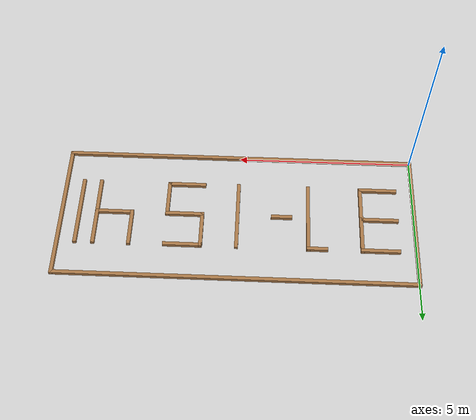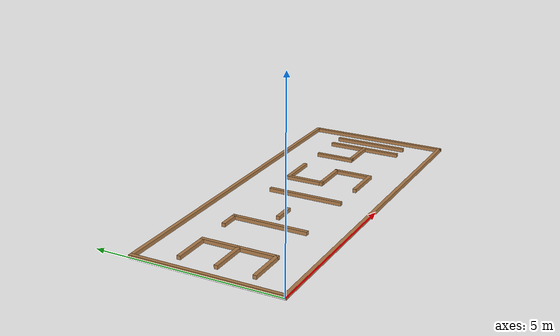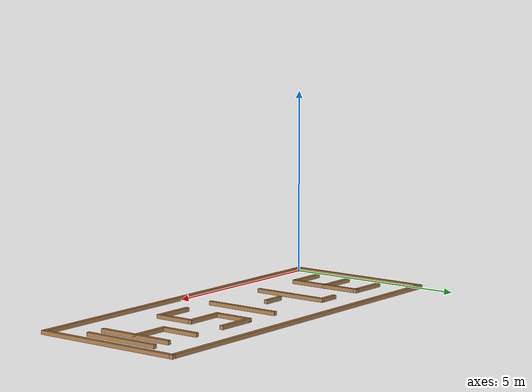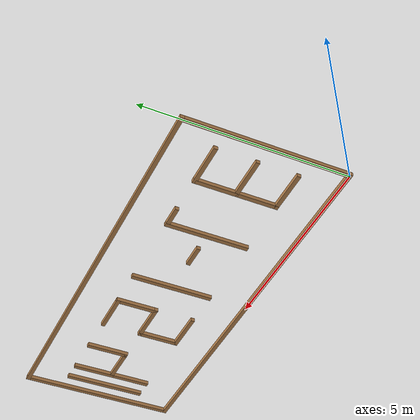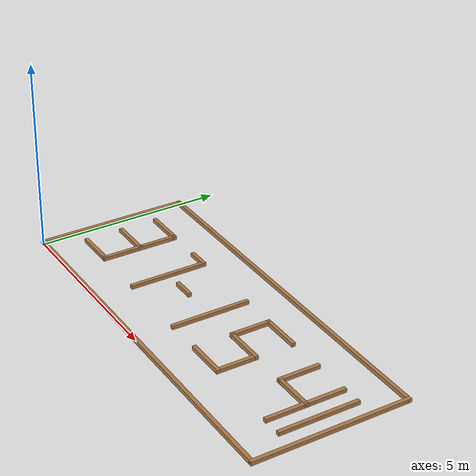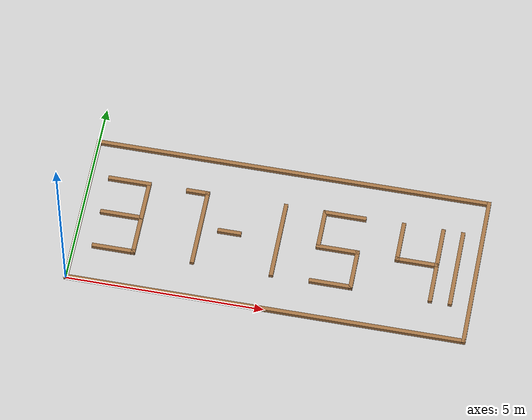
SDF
<?xml version='1.0'?>
<sdf version='1.6'>
  <model name='ModelBuilding'>
    <pose frame=''>5 2 0 0 -0 0</pose>
    <link name='Wall_14'>
      <collision name='Wall_14_Collision'>
        <geometry>
          <box>
            <size>1.1 0.1 0.1</size>
          </box>
        </geometry>
        <pose frame=''>0 0 0.05 0 -0 0</pose>
      </collision>
      <visual name='Wall_14_Visual'>
        <pose frame=''>0 0 0.05 0 -0 0</pose>
        <geometry>
          <box>
            <size>1.1 0.1 0.1</size>
          </box>
        </geometry>
        <material>
          <script>
            <uri>file://media/materials/scripts/gazebo.material</uri>
            <name>Gazebo/Wood</name>
          </script>
          <ambient>1 1 1 1</ambient>
        </material>
      </visual>
      <pose frame=''>-4 -1 0 0 -0 0</pose>
    </link>
    <link name='Wall_15'>
      <collision name='Wall_15_Collision'>
        <geometry>
          <box>
            <size>1.1 0.1 0.1</size>
          </box>
        </geometry>
        <pose frame=''>0 0 0.05 0 -0 0</pose>
      </collision>
      <visual name='Wall_15_Visual'>
        <pose frame=''>0 0 0.05 0 -0 0</pose>
        <geometry>
          <box>
            <size>1.1 0.1 0.1</size>
          </box>
        </geometry>
        <material>
          <script>
            <uri>file://media/materials/scripts/gazebo.material</uri>
            <name>Gazebo/Wood</name>
          </script>
          <ambient>1 1 1 1</ambient>
        </material>
      </visual>
      <pose frame=''>-3.5 -0.5 0 0 -0 1.5708</pose>
    </link>
    <link name='Wall_16'>
      <collision name='Wall_16_Collision'>
        <geometry>
          <box>
            <size>1.1 0.1 0.1</size>
          </box>
        </geometry>
        <pose frame=''>0 0 0.05 0 -0 0</pose>
      </collision>
      <visual name='Wall_16_Visual'>
        <pose frame=''>0 0 0.05 0 -0 0</pose>
        <geometry>
          <box>
            <size>1.1 0.1 0.1</size>
          </box>
        </geometry>
        <material>
          <script>
            <uri>file://media/materials/scripts/gazebo.material</uri>
            <name>Gazebo/Wood</name>
          </script>
          <ambient>1 1 1 1</ambient>
        </material>
      </visual>
      <pose frame=''>-4 0 0 0 -0 3.14159</pose>
    </link>
    <link name='Wall_18'>
      <collision name='Wall_18_Collision'>
        <geometry>
          <box>
            <size>1.1 0.1 0.1</size>
          </box>
        </geometry>
        <pose frame=''>0 0 0.05 0 -0 0</pose>
      </collision>
      <visual name='Wall_18_Visual'>
        <pose frame=''>0 0 0.05 0 -0 0</pose>
        <geometry>
          <box>
            <size>1.1 0.1 0.1</size>
          </box>
        </geometry>
        <material>
          <script>
            <uri>file://media/materials/scripts/gazebo.material</uri>
            <name>Gazebo/Wood</name>
          </script>
          <ambient>1 1 1 1</ambient>
        </material>
      </visual>
      <pose frame=''>-3.5 0.5 0 0 -0 1.5708</pose>
    </link>
    <link name='Wall_19'>
      <collision name='Wall_19_Collision'>
        <geometry>
          <box>
            <size>1.1 0.1 0.1</size>
          </box>
        </geometry>
        <pose frame=''>0 0 0.05 0 -0 0</pose>
      </collision>
      <visual name='Wall_19_Visual'>
        <pose frame=''>0 0 0.05 0 -0 0</pose>
        <geometry>
          <box>
            <size>1.1 0.1 0.1</size>
          </box>
        </geometry>
        <material>
          <script>
            <uri>file://media/materials/scripts/gazebo.material</uri>
            <name>Gazebo/Wood</name>
          </script>
          <ambient>1 1 1 1</ambient>
        </material>
      </visual>
      <pose frame=''>-4 1 0 0 -0 3.14159</pose>
    </link>
    <link name='Wall_21'>
      <collision name='Wall_21_Collision'>
        <geometry>
          <box>
            <size>0.6 0.1 0.1</size>
          </box>
        </geometry>
        <pose frame=''>0 0 0.05 0 -0 0</pose>
      </collision>
      <visual name='Wall_21_Visual'>
        <pose frame=''>0 0 0.05 0 -0 0</pose>
        <geometry>
          <box>
            <size>0.6 0.1 0.1</size>
          </box>
        </geometry>
        <material>
          <script>
            <uri>file://media/materials/scripts/gazebo.material</uri>
            <name>Gazebo/Wood</name>
          </script>
          <ambient>1 1 1 1</ambient>
        </material>
      </visual>
      <pose frame=''>-2.25 1 0 0 -0 0</pose>
    </link>
    <link name='Wall_22'>
      <collision name='Wall_22_Collision'>
        <geometry>
          <box>
            <size>2.1 0.1 0.1</size>
          </box>
        </geometry>
        <pose frame=''>0 0 0.05 0 -0 0</pose>
      </collision>
      <visual name='Wall_22_Visual'>
        <pose frame=''>0 0 0.05 0 -0 0</pose>
        <geometry>
          <box>
            <size>2.1 0.1 0.1</size>
          </box>
        </geometry>
        <material>
          <script>
            <uri>file://media/materials/scripts/gazebo.material</uri>
            <name>Gazebo/Wood</name>
          </script>
          <ambient>1 1 1 1</ambient>
        </material>
      </visual>
      <pose frame=''>-2 0 0 0 0 -1.5708</pose>
    </link>
    <link name='Wall_24'>
      <collision name='Wall_24_Collision'>
        <geometry>
          <box>
            <size>0.6 0.1 0.1</size>
          </box>
        </geometry>
        <pose frame=''>0 0 0.05 0 -0 0</pose>
      </collision>
      <visual name='Wall_24_Visual'>
        <pose frame=''>0 0 0.05 0 -0 0</pose>
        <geometry>
          <box>
            <size>0.6 0.1 0.1</size>
          </box>
        </geometry>
        <material>
          <script>
            <uri>file://media/materials/scripts/gazebo.material</uri>
            <name>Gazebo/Wood</name>
          </script>
          <ambient>1 1 1 1</ambient>
        </material>
      </visual>
      <pose frame=''>-1.25 0 0 0 -0 0</pose>
    </link>
    <link name='Wall_31'>
      <collision name='Wall_31_Collision'>
        <geometry>
          <box>
            <size>2.1 0.1 0.1</size>
          </box>
        </geometry>
        <pose frame=''>0 0 0.05 0 -0 0</pose>
      </collision>
      <visual name='Wall_31_Visual'>
        <pose frame=''>0 0 0.05 0 -0 0</pose>
        <geometry>
          <box>
            <size>2.1 0.1 0.1</size>
          </box>
        </geometry>
        <material>
          <script>
            <uri>file://media/materials/scripts/gazebo.material</uri>
            <name>Gazebo/Wood</name>
          </script>
          <ambient>1 1 1 1</ambient>
        </material>
      </visual>
      <pose frame=''>0 0 0 0 0 -1.5708</pose>
    </link>
    <link name='Wall_36'>
      <collision name='Wall_36_Collision'>
        <geometry>
          <box>
            <size>1.1 0.1 0.1</size>
          </box>
        </geometry>
        <pose frame=''>0 0 0.05 0 -0 0</pose>
      </collision>
      <visual name='Wall_36_Visual'>
        <pose frame=''>0 0 0.05 0 -0 0</pose>
        <geometry>
          <box>
            <size>1.1 0.1 0.1</size>
          </box>
        </geometry>
        <material>
          <script>
            <uri>file://media/materials/scripts/gazebo.material</uri>
            <name>Gazebo/Wood</name>
          </script>
          <ambient>1 1 1 1</ambient>
        </material>
      </visual>
      <pose frame=''>1.5 -1 0 0 -0 0</pose>
    </link>
    <link name='Wall_37'>
      <collision name='Wall_37_Collision'>
        <geometry>
          <box>
            <size>1.1 0.1 0.1</size>
          </box>
        </geometry>
        <pose frame=''>0 0 0.05 0 -0 0</pose>
      </collision>
      <visual name='Wall_37_Visual'>
        <pose frame=''>0 0 0.05 0 -0 0</pose>
        <geometry>
          <box>
            <size>1.1 0.1 0.1</size>
          </box>
        </geometry>
        <material>
          <script>
            <uri>file://media/materials/scripts/gazebo.material</uri>
            <name>Gazebo/Wood</name>
          </script>
          <ambient>1 1 1 1</ambient>
        </material>
      </visual>
      <pose frame=''>2 -0.5 0 0 -0 1.5708</pose>
    </link>
    <link name='Wall_38'>
      <collision name='Wall_38_Collision'>
        <geometry>
          <box>
            <size>1.1 0.1 0.1</size>
          </box>
        </geometry>
        <pose frame=''>0 0 0.05 0 -0 0</pose>
      </collision>
      <visual name='Wall_38_Visual'>
        <pose frame=''>0 0 0.05 0 -0 0</pose>
        <geometry>
          <box>
            <size>1.1 0.1 0.1</size>
          </box>
        </geometry>
        <material>
          <script>
            <uri>file://media/materials/scripts/gazebo.material</uri>
            <name>Gazebo/Wood</name>
          </script>
          <ambient>1 1 1 1</ambient>
        </material>
      </visual>
      <pose frame=''>1.5 0 0 0 -0 3.14159</pose>
    </link>
    <link name='Wall_39'>
      <collision name='Wall_39_Collision'>
        <geometry>
          <box>
            <size>1.1 0.1 0.1</size>
          </box>
        </geometry>
        <pose frame=''>0 0 0.05 0 -0 0</pose>
      </collision>
      <visual name='Wall_39_Visual'>
        <pose frame=''>0 0 0.05 0 -0 0</pose>
        <geometry>
          <box>
            <size>1.1 0.1 0.1</size>
          </box>
        </geometry>
        <material>
          <script>
            <uri>file://media/materials/scripts/gazebo.material</uri>
            <name>Gazebo/Wood</name>
          </script>
          <ambient>1 1 1 1</ambient>
        </material>
      </visual>
      <pose frame=''>1 0.5 0 0 -0 1.5708</pose>
    </link>
    <link name='Wall_40'>
      <collision name='Wall_40_Collision'>
        <geometry>
          <box>
            <size>1.1 0.1 0.1</size>
          </box>
        </geometry>
        <pose frame=''>0 0 0.05 0 -0 0</pose>
      </collision>
      <visual name='Wall_40_Visual'>
        <pose frame=''>0 0 0.05 0 -0 0</pose>
        <geometry>
          <box>
            <size>1.1 0.1 0.1</size>
          </box>
        </geometry>
        <material>
          <script>
            <uri>file://media/materials/scripts/gazebo.material</uri>
            <name>Gazebo/Wood</name>
          </script>
          <ambient>1 1 1 1</ambient>
        </material>
      </visual>
      <pose frame=''>1.5 1 0 0 -0 0</pose>
    </link>
    <link name='Wall_48'>
      <collision name='Wall_48_Collision'>
        <geometry>
          <box>
            <size>1.1 0.1 0.1</size>
          </box>
        </geometry>
        <pose frame=''>0 0 0.05 0 -0 0</pose>
      </collision>
      <visual name='Wall_48_Visual'>
        <pose frame=''>0 0 0.05 0 -0 0</pose>
        <geometry>
          <box>
            <size>1.1 0.1 0.1</size>
          </box>
        </geometry>
        <material>
          <script>
            <uri>file://media/materials/scripts/gazebo.material</uri>
            <name>Gazebo/Wood</name>
          </script>
          <ambient>1 1 1 1</ambient>
        </material>
      </visual>
      <pose frame=''>3 0.5 0 0 0 -1.5708</pose>
    </link>
    <link name='Wall_49'>
      <collision name='Wall_49_Collision'>
        <geometry>
          <box>
            <size>1.1 0.1 0.1</size>
          </box>
        </geometry>
        <pose frame=''>0 0 0.05 0 -0 0</pose>
      </collision>
      <visual name='Wall_49_Visual'>
        <pose frame=''>0 0 0.05 0 -0 0</pose>
        <geometry>
          <box>
            <size>1.1 0.1 0.1</size>
          </box>
        </geometry>
        <material>
          <script>
            <uri>file://media/materials/scripts/gazebo.material</uri>
            <name>Gazebo/Wood</name>
          </script>
          <ambient>1 1 1 1</ambient>
        </material>
      </visual>
      <pose frame=''>3.5 0 0 0 -0 0</pose>
    </link>
    <link name='Wall_5'>
      <collision name='Wall_5_Collision'>
        <geometry>
          <box>
            <size>10.1 0.1 0.1</size>
          </box>
        </geometry>
        <pose frame=''>0 0 0.05 0 -0 0</pose>
      </collision>
      <visual name='Wall_5_Visual'>
        <pose frame=''>0 0 0.05 0 -0 0</pose>
        <geometry>
          <box>
            <size>10.1 0.1 0.1</size>
          </box>
        </geometry>
        <material>
          <script>
            <uri>file://media/materials/scripts/gazebo.material</uri>
            <name>Gazebo/Wood</name>
          </script>
          <ambient>1 1 1 1</ambient>
        </material>
      </visual>
      <pose frame=''>0 -2 0 0 -0 0</pose>
    </link>
    <link name='Wall_50'>
      <collision name='Wall_50_Collision'>
        <geometry>
          <box>
            <size>1.1 0.1 0.1</size>
          </box>
        </geometry>
        <pose frame=''>0 0 0.05 0 -0 0</pose>
      </collision>
      <visual name='Wall_50_Visual'>
        <pose frame=''>0 0 0.05 0 -0 0</pose>
        <geometry>
          <box>
            <size>1.1 0.1 0.1</size>
          </box>
        </geometry>
        <material>
          <script>
            <uri>file://media/materials/scripts/gazebo.material</uri>
            <name>Gazebo/Wood</name>
          </script>
          <ambient>1 1 1 1</ambient>
        </material>
      </visual>
      <pose frame=''>4 0.5 0 0 -0 1.5708</pose>
    </link>
    <link name='Wall_52'>
      <collision name='Wall_52_Collision'>
        <geometry>
          <box>
            <size>1.1 0.1 0.1</size>
          </box>
        </geometry>
        <pose frame=''>0 0 0.05 0 -0 0</pose>
      </collision>
      <visual name='Wall_52_Visual'>
        <pose frame=''>0 0 0.05 0 -0 0</pose>
        <geometry>
          <box>
            <size>1.1 0.1 0.1</size>
          </box>
        </geometry>
        <material>
          <script>
            <uri>file://media/materials/scripts/gazebo.material</uri>
            <name>Gazebo/Wood</name>
          </script>
          <ambient>1 1 1 1</ambient>
        </material>
      </visual>
      <pose frame=''>4 -0.5 0 0 0 -1.5708</pose>
    </link>
    <link name='Wall_54'>
      <collision name='Wall_54_Collision'>
        <geometry>
          <box>
            <size>2.1 0.1 0.1</size>
          </box>
        </geometry>
        <pose frame=''>0 0 0.05 0 -0 0</pose>
      </collision>
      <visual name='Wall_54_Visual'>
        <pose frame=''>0 0 0.05 0 -0 0</pose>
        <geometry>
          <box>
            <size>2.1 0.1 0.1</size>
          </box>
        </geometry>
        <material>
          <script>
            <uri>file://media/materials/scripts/gazebo.material</uri>
            <name>Gazebo/Wood</name>
          </script>
          <ambient>1 1 1 1</ambient>
        </material>
      </visual>
      <pose frame=''>4.5 0 0 0 -0 1.5708</pose>
    </link>
    <link name='Wall_6'>
      <collision name='Wall_6_Collision'>
        <geometry>
          <box>
            <size>4.1 0.1 0.1</size>
          </box>
        </geometry>
        <pose frame=''>0 0 0.05 0 -0 0</pose>
      </collision>
      <visual name='Wall_6_Visual'>
        <pose frame=''>0 0 0.05 0 -0 0</pose>
        <geometry>
          <box>
            <size>4.1 0.1 0.1</size>
          </box>
        </geometry>
        <material>
          <script>
            <uri>file://media/materials/scripts/gazebo.material</uri>
            <name>Gazebo/Wood</name>
          </script>
          <ambient>1 1 1 1</ambient>
        </material>
      </visual>
      <pose frame=''>5 0 0 0 -0 1.5708</pose>
    </link>
    <link name='Wall_7'>
      <collision name='Wall_7_Collision'>
        <geometry>
          <box>
            <size>10.1 0.1 0.1</size>
          </box>
        </geometry>
        <pose frame=''>0 0 0.05 0 -0 0</pose>
      </collision>
      <visual name='Wall_7_Visual'>
        <pose frame=''>0 0 0.05 0 -0 0</pose>
        <geometry>
          <box>
            <size>10.1 0.1 0.1</size>
          </box>
        </geometry>
        <material>
          <script>
            <uri>file://media/materials/scripts/gazebo.material</uri>
            <name>Gazebo/Wood</name>
          </script>
          <ambient>1 1 1 1</ambient>
        </material>
      </visual>
      <pose frame=''>0 2 0 0 -0 3.14159</pose>
    </link>
    <link name='Wall_8'>
      <collision name='Wall_8_Collision'>
        <geometry>
          <box>
            <size>4.1 0.1 0.1</size>
          </box>
        </geometry>
        <pose frame=''>0 0 0.05 0 -0 0</pose>
      </collision>
      <visual name='Wall_8_Visual'>
        <pose frame=''>0 0 0.05 0 -0 0</pose>
        <geometry>
          <box>
            <size>4.1 0.1 0.1</size>
          </box>
        </geometry>
        <material>
          <script>
            <uri>file://media/materials/scripts/gazebo.material</uri>
            <name>Gazebo/Wood</name>
          </script>
          <ambient>1 1 1 1</ambient>
        </material>
      </visual>
      <pose frame=''>-5 0 0 0 0 -1.5708</pose>
    </link>
    <static>1</static>
  </model>
</sdf>
